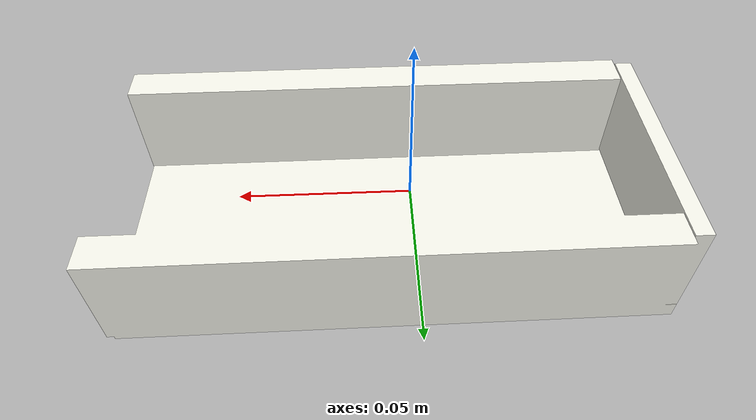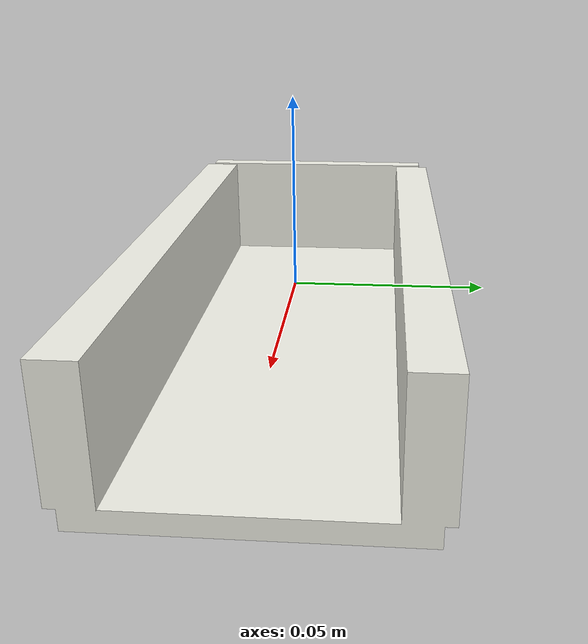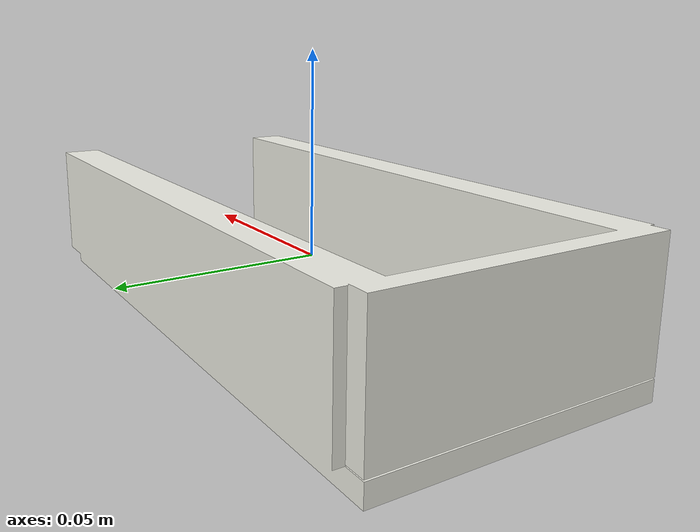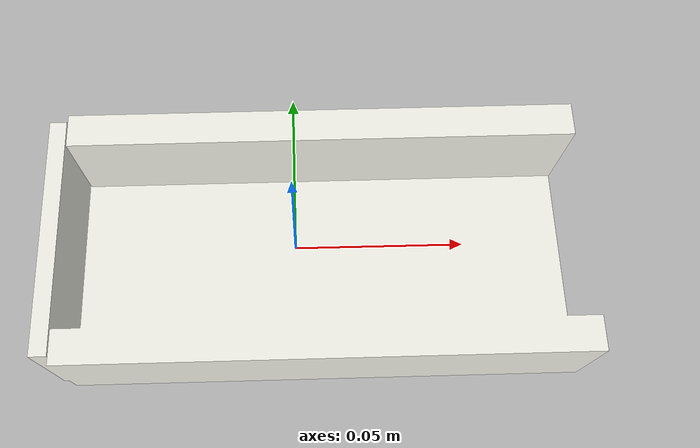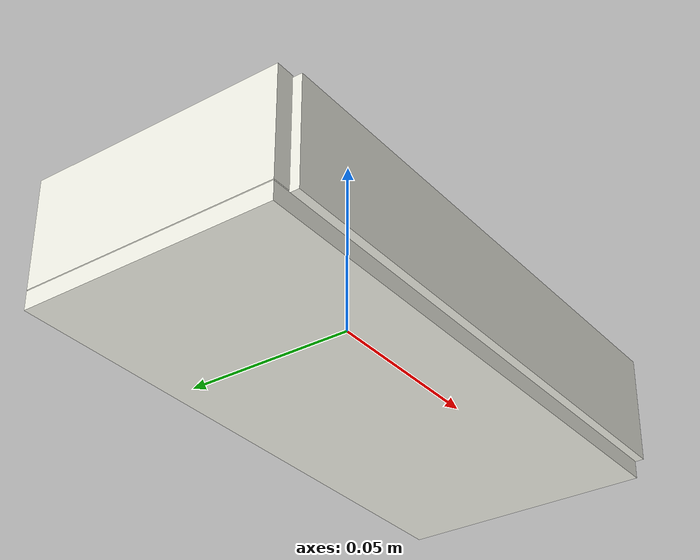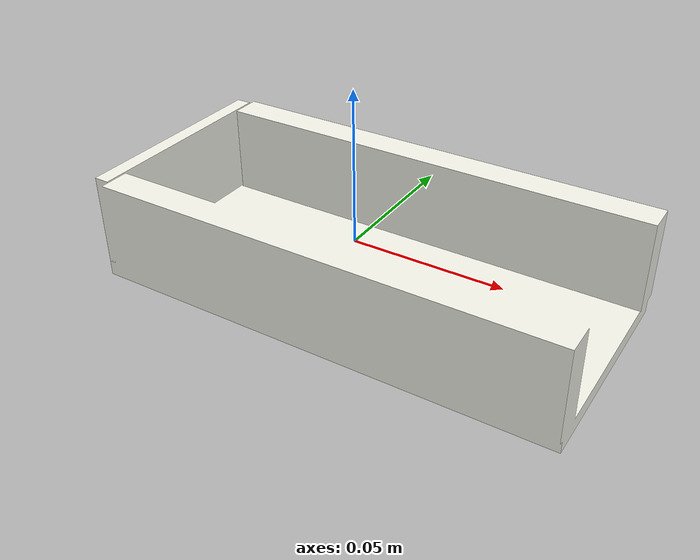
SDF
<?xml version="1.0"?>
<sdf version="1.9">
  <model name="case2">
    <static>false</static>
    <link name="case2_link">
      <velocity_decay>
        <linear>0.600000</linear>
        <angular>1.200000</angular>
      </velocity_decay>
      <inertial>
        <mass>0.150000</mass>
        <inertia>
          <ixx>0.000150000</ixx>
          <iyy>0.000150000</iyy>
          <izz>0.000150000</izz>
          <ixy>0</ixy>
          <ixz>0</ixz>
          <iyz>0</iyz>
        </inertia>
      </inertial>
      <visual name="case2_visual">
        <geometry>
          <mesh>
            <uri>meshes/case2.obj</uri>
          </mesh>
        </geometry>
        <material>
          <ambient>0.240000 0.240000 0.230000 1.000000</ambient>
          <diffuse>0.960000 0.960000 0.920000 1.000000</diffuse>
          <specular>0.120000 0.120000 0.120000 1.000000</specular>
        </material>
      </visual>
      <collision name="case2_case_back_001_collision">
        <pose>-0.069319546 0.000155032 0.002869010 0 0 0</pose>
        <geometry>
          <box>
            <size>0.004999995 0.070000000 0.030000001</size>
          </box>
        </geometry>
        <max_contacts>20</max_contacts>
        <surface>
          <friction>
            <ode>
              <mu>100.0</mu>
              <mu2>100.0</mu2>
              <slip1>0.0</slip1>
              <slip2>0.0</slip2>
            </ode>
            <torsional>
              <coefficient>1.0</coefficient>
              <use_patch_radius>true</use_patch_radius>
              <patch_radius>0.020000</patch_radius>
              <surface_radius>0.010000</surface_radius>
              <ode>
                <slip>0.0</slip>
              </ode>
            </torsional>
          </friction>
          <contact>
            <ode>
              <soft_cfm>0.000000</soft_cfm>
              <soft_erp>0.800000</soft_erp>
              <kp>1000000.000000</kp>
              <kd>100.000000</kd>
              <max_vel>0.010000</max_vel>
              <min_depth>0.002000</min_depth>
            </ode>
          </contact>
        </surface>
      </collision>
      <collision name="case2_case_bottom_001_collision">
        <pose>0.005661786 0.000124991 -0.014937997 0 0 0</pose>
        <geometry>
          <box>
            <size>0.155000001 0.070000000 0.004999999</size>
          </box>
        </geometry>
        <max_contacts>20</max_contacts>
        <surface>
          <friction>
            <ode>
              <mu>100.0</mu>
              <mu2>100.0</mu2>
              <slip1>0.0</slip1>
              <slip2>0.0</slip2>
            </ode>
            <torsional>
              <coefficient>1.0</coefficient>
              <use_patch_radius>true</use_patch_radius>
              <patch_radius>0.020000</patch_radius>
              <surface_radius>0.010000</surface_radius>
              <ode>
                <slip>0.0</slip>
              </ode>
            </torsional>
          </friction>
          <contact>
            <ode>
              <soft_cfm>0.000000</soft_cfm>
              <soft_erp>0.800000</soft_erp>
              <kp>1000000.000000</kp>
              <kd>100.000000</kd>
              <max_vel>0.010000</max_vel>
              <min_depth>0.002000</min_depth>
            </ode>
          </contact>
        </surface>
      </collision>
      <collision name="case2_case_left_001_collision">
        <pose>0.008358419 0.032538384 0.002514750 0 0 0</pose>
        <geometry>
          <box>
            <size>0.150000006 0.009999998 0.030000001</size>
          </box>
        </geometry>
        <max_contacts>20</max_contacts>
        <surface>
          <friction>
            <ode>
              <mu>100.0</mu>
              <mu2>100.0</mu2>
              <slip1>0.0</slip1>
              <slip2>0.0</slip2>
            </ode>
            <torsional>
              <coefficient>1.0</coefficient>
              <use_patch_radius>true</use_patch_radius>
              <patch_radius>0.020000</patch_radius>
              <surface_radius>0.010000</surface_radius>
              <ode>
                <slip>0.0</slip>
              </ode>
            </torsional>
          </friction>
          <contact>
            <ode>
              <soft_cfm>0.000000</soft_cfm>
              <soft_erp>0.800000</soft_erp>
              <kp>1000000.000000</kp>
              <kd>100.000000</kd>
              <max_vel>0.010000</max_vel>
              <min_depth>0.002000</min_depth>
            </ode>
          </contact>
        </surface>
      </collision>
      <collision name="case2_case_right_001_collision">
        <pose>0.008358419 -0.032260597 0.002514750 0 0 0</pose>
        <geometry>
          <box>
            <size>0.150000006 0.009999998 0.030000001</size>
          </box>
        </geometry>
        <max_contacts>20</max_contacts>
        <surface>
          <friction>
            <ode>
              <mu>100.0</mu>
              <mu2>100.0</mu2>
              <slip1>0.0</slip1>
              <slip2>0.0</slip2>
            </ode>
            <torsional>
              <coefficient>1.0</coefficient>
              <use_patch_radius>true</use_patch_radius>
              <patch_radius>0.020000</patch_radius>
              <surface_radius>0.010000</surface_radius>
              <ode>
                <slip>0.0</slip>
              </ode>
            </torsional>
          </friction>
          <contact>
            <ode>
              <soft_cfm>0.000000</soft_cfm>
              <soft_erp>0.800000</soft_erp>
              <kp>1000000.000000</kp>
              <kd>100.000000</kd>
              <max_vel>0.010000</max_vel>
              <min_depth>0.002000</min_depth>
            </ode>
          </contact>
        </surface>
      </collision>
    </link>
  </model>
</sdf>
